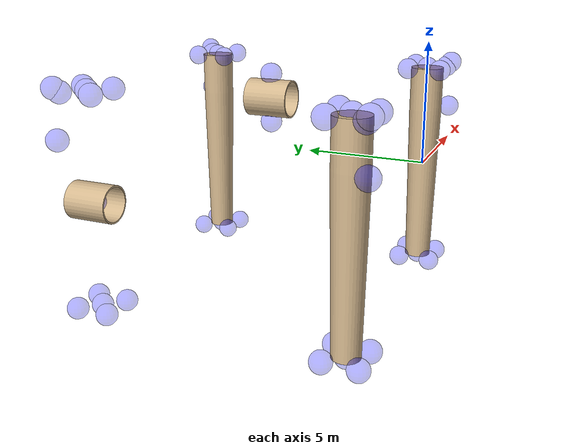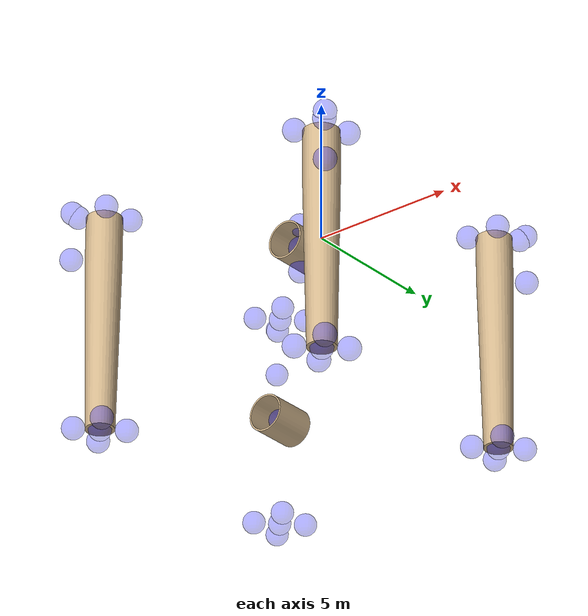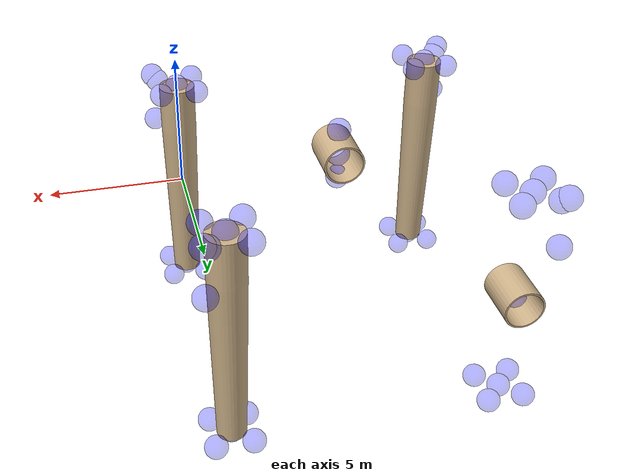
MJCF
<mujoco model="toy_table">
  <asset>
    <mesh file="0.stl" name="part0" scale="1 1 1" />
    <mesh file="4.stl" name="part4" scale="1 1 1" />
    <mesh file="3.stl" name="part3" scale="1 1 1" />
    <mesh file="2.stl" name="part2" scale="1 1 1" />
    <mesh file="1.stl" name="part1" scale="1 1 1" />
  </asset>
  <equality>
    </equality>
  <worldbody>
    <body name="0_part0" pos="0.0 0.0 0.0" quat="1 0 0 0">
      <geom conaffinity="0" contype="0" density="0" mesh="part0" name="0_part0_mesh" pos="0 0 0" rgba="0.82 0.71 0.55 1" type="mesh" />
      <site name="0_part0_horizontal_radius_site" pos="0.0 0.0 0.0" quat="1 0 0 0" rgba="0 0 1 0.3" size="0.4" />
      <site name="0_part0_top_site" pos="0.0 0.0 3.9965285" quat="1 0 0 0" rgba="0 0 1 0.3" size="0.4" />
      <site name="0_part0_bottom_site" pos="0.0 0.0 -3.9965285" quat="1 0 0 0" rgba="0 0 1 0.3" size="0.4" />
      <site name="0_part0_corner_site8" pos="-0.634049 0.634049 3.9965285" quat="1 0 0 0" rgba="0 0 1 0.3" size="0.4" />
      <site name="0_part0_corner_site7" pos="0.634049 0.634049 3.9965285" quat="1 0 0 0" rgba="0 0 1 0.3" size="0.4" />
      <site name="0_part0_corner_site6" pos="0.634049 -0.634049 3.9965285" quat="1 0 0 0" rgba="0 0 1 0.3" size="0.4" />
      <site name="0_part0_corner_site5" pos="-0.634049 -0.634049 3.9965285" quat="1 0 0 0" rgba="0 0 1 0.3" size="0.4" />
      <site name="0_part0_corner_site4" pos="-0.634049 0.634049 -3.9965285" quat="1 0 0 0" rgba="0 0 1 0.3" size="0.4" />
      <site name="0_part0_corner_site3" pos="0.634049 0.634049 -3.9965285" quat="1 0 0 0" rgba="0 0 1 0.3" size="0.4" />
      <site name="0_part0_corner_site2" pos="0.634049 -0.634049 -3.9965285" quat="1 0 0 0" rgba="0 0 1 0.3" size="0.4" />
      <site name="0_part0_corner_site1" pos="-0.634049 -0.634049 -3.9965285" quat="1 0 0 0" rgba="0 0 1 0.3" size="0.4" />
    </body>
    <body name="4_part4" pos="-4.731 4.7309995 3.248401" quat="1 0 0 0">
      <geom conaffinity="0" contype="0" density="0" mesh="part4" name="4_part4_mesh" pos="0 0 0" rgba="0.82 0.71 0.55 1" type="mesh" />
      <site name="4_part4_horizontal_radius_site" pos="0.0 0.0 0.0" quat="1 0 0 0" rgba="0 0 1 0.3" size="0.4" />
      <site name="4_part4_top_site" pos="0.0 0.0 0.8986305" quat="1 0 0 0" rgba="0 0 1 0.3" size="0.4" />
      <site name="4_part4_bottom_site" pos="0.0 0.0 -0.8986305" quat="1 0 0 0" rgba="0 0 1 0.3" size="0.4" />
      <site name="4_part4_corner_site8" pos="-5.508806 5.5088065 0.8986305" quat="1 0 0 0" rgba="0 0 1 0.3" size="0.4" />
      <site name="4_part4_corner_site7" pos="5.508806 5.5088065 0.8986305" quat="1 0 0 0" rgba="0 0 1 0.3" size="0.4" />
      <site name="4_part4_corner_site6" pos="5.508806 -5.5088065 0.8986305" quat="1 0 0 0" rgba="0 0 1 0.3" size="0.4" />
      <site name="4_part4_corner_site5" pos="-5.508806 -5.5088065 0.8986305" quat="1 0 0 0" rgba="0 0 1 0.3" size="0.4" />
      <site name="4_part4_corner_site4" pos="-5.508806 5.5088065 -0.8986305" quat="1 0 0 0" rgba="0 0 1 0.3" size="0.4" />
      <site name="4_part4_corner_site3" pos="5.508806 5.5088065 -0.8986305" quat="1 0 0 0" rgba="0 0 1 0.3" size="0.4" />
      <site name="4_part4_corner_site2" pos="5.508806 -5.5088065 -0.8986305" quat="1 0 0 0" rgba="0 0 1 0.3" size="0.4" />
      <site name="4_part4_corner_site1" pos="-5.508806 -5.5088065 -0.8986305" quat="1 0 0 0" rgba="0 0 1 0.3" size="0.4" />
    </body>
    <body name="3_part3" pos="-9.462 0.0 0.0" quat="1 0 0 0">
      <geom conaffinity="0" contype="0" density="0" mesh="part3" name="3_part3_mesh" pos="0 0 0" rgba="0.82 0.71 0.55 1" type="mesh" />
      <site name="3_part3_horizontal_radius_site" pos="0.0 0.0 0.0" quat="1 0 0 0" rgba="0 0 1 0.3" size="0.4" />
      <site name="3_part3_top_site" pos="0.0 0.0 3.9965285" quat="1 0 0 0" rgba="0 0 1 0.3" size="0.4" />
      <site name="3_part3_bottom_site" pos="0.0 0.0 -3.9965285" quat="1 0 0 0" rgba="0 0 1 0.3" size="0.4" />
      <site name="3_part3_corner_site8" pos="-0.634049 0.634049 3.9965285" quat="1 0 0 0" rgba="0 0 1 0.3" size="0.4" />
      <site name="3_part3_corner_site7" pos="0.634049 0.634049 3.9965285" quat="1 0 0 0" rgba="0 0 1 0.3" size="0.4" />
      <site name="3_part3_corner_site6" pos="0.634049 -0.634049 3.9965285" quat="1 0 0 0" rgba="0 0 1 0.3" size="0.4" />
      <site name="3_part3_corner_site5" pos="-0.634049 -0.634049 3.9965285" quat="1 0 0 0" rgba="0 0 1 0.3" size="0.4" />
      <site name="3_part3_corner_site4" pos="-0.634049 0.634049 -3.9965285" quat="1 0 0 0" rgba="0 0 1 0.3" size="0.4" />
      <site name="3_part3_corner_site3" pos="0.634049 0.634049 -3.9965285" quat="1 0 0 0" rgba="0 0 1 0.3" size="0.4" />
      <site name="3_part3_corner_site2" pos="0.634049 -0.634049 -3.9965285" quat="1 0 0 0" rgba="0 0 1 0.3" size="0.4" />
      <site name="3_part3_corner_site1" pos="-0.634049 -0.634049 -3.9965285" quat="1 0 0 0" rgba="0 0 1 0.3" size="0.4" />
    </body>
    <body name="2_part2" pos="0.0 9.462 -0.0" quat="1 0 0 0">
      <geom conaffinity="0" contype="0" density="0" mesh="part2" name="2_part2_mesh" pos="0 0 0" rgba="0.82 0.71 0.55 1" type="mesh" />
      <site name="2_part2_horizontal_radius_site" pos="0.0 0.0 0.0" quat="1 0 0 0" rgba="0 0 1 0.3" size="0.4" />
      <site name="2_part2_top_site" pos="0.0 0.0 3.9965285" quat="1 0 0 0" rgba="0 0 1 0.3" size="0.4" />
      <site name="2_part2_bottom_site" pos="0.0 0.0 -3.9965285" quat="1 0 0 0" rgba="0 0 1 0.3" size="0.4" />
      <site name="2_part2_corner_site8" pos="-0.634049 0.634049 3.9965285" quat="1 0 0 0" rgba="0 0 1 0.3" size="0.4" />
      <site name="2_part2_corner_site7" pos="0.634049 0.634049 3.9965285" quat="1 0 0 0" rgba="0 0 1 0.3" size="0.4" />
      <site name="2_part2_corner_site6" pos="0.634049 -0.634049 3.9965285" quat="1 0 0 0" rgba="0 0 1 0.3" size="0.4" />
      <site name="2_part2_corner_site5" pos="-0.634049 -0.634049 3.9965285" quat="1 0 0 0" rgba="0 0 1 0.3" size="0.4" />
      <site name="2_part2_corner_site4" pos="-0.634049 0.634049 -3.9965285" quat="1 0 0 0" rgba="0 0 1 0.3" size="0.4" />
      <site name="2_part2_corner_site3" pos="0.634049 0.634049 -3.9965285" quat="1 0 0 0" rgba="0 0 1 0.3" size="0.4" />
      <site name="2_part2_corner_site2" pos="0.634049 -0.634049 -3.9965285" quat="1 0 0 0" rgba="0 0 1 0.3" size="0.4" />
      <site name="2_part2_corner_site1" pos="-0.634049 -0.634049 -3.9965285" quat="1 0 0 0" rgba="0 0 1 0.3" size="0.4" />
    </body>
    <body name="1_part1" pos="-9.462 9.462 -0.0" quat="1 0 0 0">
      <geom conaffinity="0" contype="0" density="0" mesh="part1" name="1_part1_mesh" pos="0 0 0" rgba="0.82 0.71 0.55 1" type="mesh" />
      <site name="1_part1_horizontal_radius_site" pos="0.0 0.0 0.0" quat="1 0 0 0" rgba="0 0 1 0.3" size="0.4" />
      <site name="1_part1_top_site" pos="0.0 0.0 3.9965285" quat="1 0 0 0" rgba="0 0 1 0.3" size="0.4" />
      <site name="1_part1_bottom_site" pos="0.0 0.0 -3.9965285" quat="1 0 0 0" rgba="0 0 1 0.3" size="0.4" />
      <site name="1_part1_corner_site8" pos="-0.634049 0.634049 3.9965285" quat="1 0 0 0" rgba="0 0 1 0.3" size="0.4" />
      <site name="1_part1_corner_site7" pos="0.634049 0.634049 3.9965285" quat="1 0 0 0" rgba="0 0 1 0.3" size="0.4" />
      <site name="1_part1_corner_site6" pos="0.634049 -0.634049 3.9965285" quat="1 0 0 0" rgba="0 0 1 0.3" size="0.4" />
      <site name="1_part1_corner_site5" pos="-0.634049 -0.634049 3.9965285" quat="1 0 0 0" rgba="0 0 1 0.3" size="0.4" />
      <site name="1_part1_corner_site4" pos="-0.634049 0.634049 -3.9965285" quat="1 0 0 0" rgba="0 0 1 0.3" size="0.4" />
      <site name="1_part1_corner_site3" pos="0.634049 0.634049 -3.9965285" quat="1 0 0 0" rgba="0 0 1 0.3" size="0.4" />
      <site name="1_part1_corner_site2" pos="0.634049 -0.634049 -3.9965285" quat="1 0 0 0" rgba="0 0 1 0.3" size="0.4" />
      <site name="1_part1_corner_site1" pos="-0.634049 -0.634049 -3.9965285" quat="1 0 0 0" rgba="0 0 1 0.3" size="0.4" />
    </body>
  </worldbody>
</mujoco>
